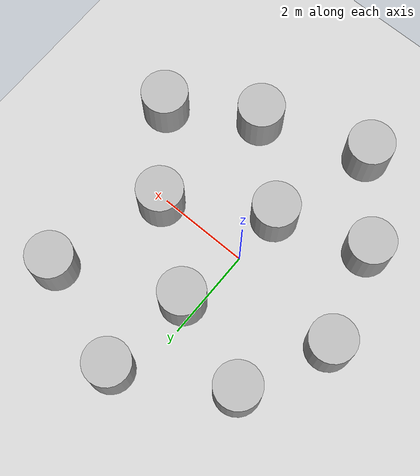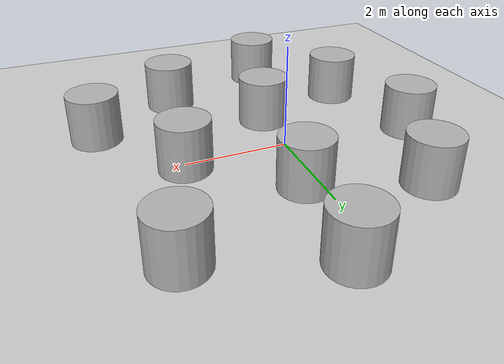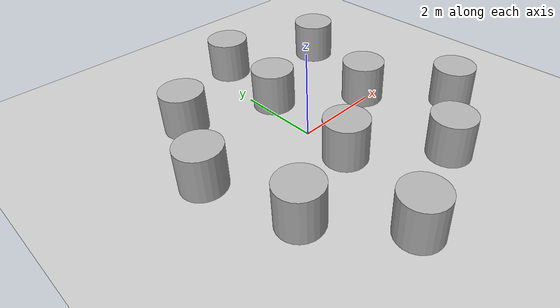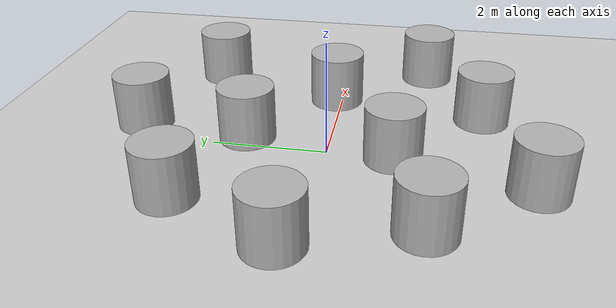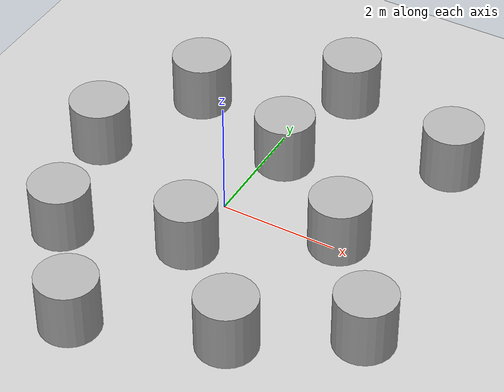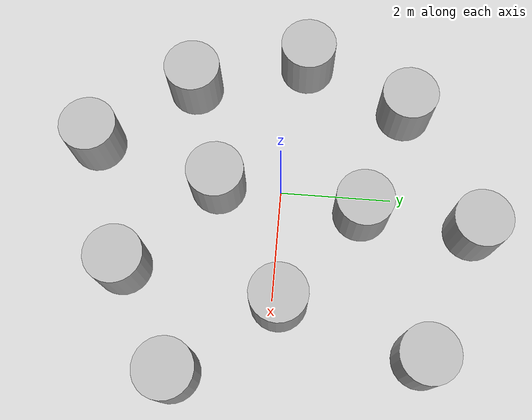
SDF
<sdf version='1.9'>
  <world name='waffle_world'>
    <physics name='1ms' type='ignored'>
      <max_step_size>0.001</max_step_size>
      <real_time_factor>1</real_time_factor>
      <real_time_update_rate>1000</real_time_update_rate>
    </physics>
    <plugin name='ignition::gazebo::systems::Physics' filename='libignition-gazebo-physics-system.so'/>
    <plugin name='ignition::gazebo::systems::UserCommands' filename='libignition-gazebo-user-commands-system.so'/>
    <plugin name='ignition::gazebo::systems::SceneBroadcaster' filename='libignition-gazebo-scene-broadcaster-system.so'/>
    <plugin name='ignition::gazebo::systems::Sensors' filename='libignition-gazebo-sensors-system.so'>
      <render_engine>ogre2</render_engine>
    </plugin>
    <gravity>0 0 -9.8</gravity>
    <magnetic_field>6e-06 2.3e-05 -4.2e-05</magnetic_field>
    <atmosphere type='adiabatic'/>
    <scene>
      <ambient>0.4 0.4 0.4 1</ambient>
      <background>0.7 0.7 0.7 1</background>
      <shadows>true</shadows>
    </scene>
    <model name='ground_plane'>
      <static>true</static>
      <link name='link'>
        <collision name='collision'>
          <geometry>
            <plane>
              <normal>0 0 1</normal>
              <size>100 100</size>
            </plane>
          </geometry>
          <surface>
            <friction>
              <ode/>
            </friction>
            <bounce/>
            <contact/>
          </surface>
        </collision>
        <visual name='visual'>
          <geometry>
            <plane>
              <normal>0 0 1</normal>
              <size>100 100</size>
            </plane>
          </geometry>
          <material>
            <ambient>0.8 0.8 0.8 1</ambient>
            <diffuse>0.8 0.8 0.8 1</diffuse>
            <specular>0.8 0.8 0.8 1</specular>
          </material>
        </visual>
        <pose>0 0 0 0 -0 0</pose>
        <inertial>
          <pose>0 0 0 0 -0 0</pose>
          <mass>1</mass>
          <inertia>
            <ixx>1</ixx>
            <ixy>0</ixy>
            <ixz>0</ixz>
            <iyy>1</iyy>
            <iyz>0</iyz>
            <izz>1</izz>
          </inertia>
        </inertial>
        <enable_wind>false</enable_wind>
      </link>
      <pose>0 0 0 0 -0 0</pose>
      <self_collide>false</self_collide>
    </model>

    <model name='cylinder'>
      <pose>-0.010856 -1.13372 0.499999 0 0 0</pose>
      <link name='cylinder_link'>
        <inertial>
          <inertia>
            <ixx>0.14580000000000001</ixx>
            <ixy>0</ixy>
            <ixz>0</ixz>
            <iyy>0.14580000000000001</iyy>
            <iyz>0</iyz>
            <izz>0.125</izz>
          </inertia>
          <mass>1</mass>
          <pose>0 0 0 0 -0 0</pose>
        </inertial>
        <collision name='cylinder_collision'>
          <geometry>
            <cylinder>
              <radius>0.5</radius>
              <length>1</length>
            </cylinder>
          </geometry>
          <surface>
            <friction>
              <ode/>
            </friction>
            <bounce/>
            <contact/>
          </surface>
        </collision>
        <visual name='cylinder_visual'>
          <geometry>
            <cylinder>
              <radius>0.5</radius>
              <length>1</length>
            </cylinder>
          </geometry>
          <material>
            <ambient>0.3 0.3 0.3 1</ambient>
            <diffuse>0.7 0.7 0.7 1</diffuse>
            <specular>1 1 1 1</specular>
          </material>
        </visual>
        <pose>0 0 0 0 -0 0</pose>
        <enable_wind>false</enable_wind>
      </link>
      <static>false</static>
      <self_collide>false</self_collide>
    </model>
    <model name='cylinder_0'>
      <pose>2.02696 0.11952 0.499999 -0 -0 0</pose>
      <link name='cylinder_link'>
        <inertial>
          <inertia>
            <ixx>0.14580000000000001</ixx>
            <ixy>0</ixy>
            <ixz>0</ixz>
            <iyy>0.14580000000000001</iyy>
            <iyz>0</iyz>
            <izz>0.125</izz>
          </inertia>
          <mass>1</mass>
          <pose>0 0 0 0 -0 0</pose>
        </inertial>
        <collision name='cylinder_collision'>
          <geometry>
            <cylinder>
              <radius>0.5</radius>
              <length>1</length>
            </cylinder>
          </geometry>
          <surface>
            <friction>
              <ode/>
            </friction>
            <bounce/>
            <contact/>
          </surface>
        </collision>
        <visual name='cylinder_visual'>
          <geometry>
            <cylinder>
              <radius>0.5</radius>
              <length>1</length>
            </cylinder>
          </geometry>
          <material>
            <ambient>0.3 0.3 0.3 1</ambient>
            <diffuse>0.7 0.7 0.7 1</diffuse>
            <specular>1 1 1 1</specular>
          </material>
        </visual>
        <pose>0 0 0 0 -0 0</pose>
        <enable_wind>false</enable_wind>
      </link>
      <static>false</static>
      <self_collide>false</self_collide>
    </model>
    <model name='cylinder_1'>
      <pose>0.30309 1.46155 0.499999 -0 0 0</pose>
      <link name='cylinder_link'>
        <inertial>
          <inertia>
            <ixx>0.14580000000000001</ixx>
            <ixy>0</ixy>
            <ixz>0</ixz>
            <iyy>0.14580000000000001</iyy>
            <iyz>0</iyz>
            <izz>0.125</izz>
          </inertia>
          <mass>1</mass>
          <pose>0 0 0 0 -0 0</pose>
        </inertial>
        <collision name='cylinder_collision'>
          <geometry>
            <cylinder>
              <radius>0.5</radius>
              <length>1</length>
            </cylinder>
          </geometry>
          <surface>
            <friction>
              <ode/>
            </friction>
            <bounce/>
            <contact/>
          </surface>
        </collision>
        <visual name='cylinder_visual'>
          <geometry>
            <cylinder>
              <radius>0.5</radius>
              <length>1</length>
            </cylinder>
          </geometry>
          <material>
            <ambient>0.3 0.3 0.3 1</ambient>
            <diffuse>0.7 0.7 0.7 1</diffuse>
            <specular>1 1 1 1</specular>
          </material>
        </visual>
        <pose>0 0 0 0 -0 0</pose>
        <enable_wind>false</enable_wind>
      </link>
      <static>false</static>
      <self_collide>false</self_collide>
    </model>
    <model name='cylinder_2'>
      <pose>-2.56609 0.314251 0.499999 0 -0 0</pose>
      <link name='cylinder_link'>
        <inertial>
          <inertia>
            <ixx>0.14580000000000001</ixx>
            <ixy>0</ixy>
            <ixz>0</ixz>
            <iyy>0.14580000000000001</iyy>
            <iyz>0</iyz>
            <izz>0.125</izz>
          </inertia>
          <mass>1</mass>
          <pose>0 0 0 0 -0 0</pose>
        </inertial>
        <collision name='cylinder_collision'>
          <geometry>
            <cylinder>
              <radius>0.5</radius>
              <length>1</length>
            </cylinder>
          </geometry>
          <surface>
            <friction>
              <ode/>
            </friction>
            <bounce/>
            <contact/>
          </surface>
        </collision>
        <visual name='cylinder_visual'>
          <geometry>
            <cylinder>
              <radius>0.5</radius>
              <length>1</length>
            </cylinder>
          </geometry>
          <material>
            <ambient>0.3 0.3 0.3 1</ambient>
            <diffuse>0.7 0.7 0.7 1</diffuse>
            <specular>1 1 1 1</specular>
          </material>
        </visual>
        <pose>0 0 0 0 -0 0</pose>
        <enable_wind>false</enable_wind>
      </link>
      <static>false</static>
      <self_collide>false</self_collide>
    </model>
    <model name='cylinder_3'>
      <pose>1.59187 -2.64309 0.499999 -0 -0 0</pose>
      <link name='cylinder_link'>
        <inertial>
          <inertia>
            <ixx>0.14580000000000001</ixx>
            <ixy>0</ixy>
            <ixz>0</ixz>
            <iyy>0.14580000000000001</iyy>
            <iyz>0</iyz>
            <izz>0.125</izz>
          </inertia>
          <mass>1</mass>
          <pose>0 0 0 0 -0 0</pose>
        </inertial>
        <collision name='cylinder_collision'>
          <geometry>
            <cylinder>
              <radius>0.5</radius>
              <length>1</length>
            </cylinder>
          </geometry>
          <surface>
            <friction>
              <ode/>
            </friction>
            <bounce/>
            <contact/>
          </surface>
        </collision>
        <visual name='cylinder_visual'>
          <geometry>
            <cylinder>
              <radius>0.5</radius>
              <length>1</length>
            </cylinder>
          </geometry>
          <material>
            <ambient>0.3 0.3 0.3 1</ambient>
            <diffuse>0.7 0.7 0.7 1</diffuse>
            <specular>1 1 1 1</specular>
          </material>
        </visual>
        <pose>0 0 0 0 -0 0</pose>
        <enable_wind>false</enable_wind>
      </link>
      <static>false</static>
      <self_collide>false</self_collide>
    </model>
    <model name='cylinder_4'>
      <pose>-1.95865 -1.75776 0.499999 0 0 -0</pose>
      <link name='cylinder_link'>
        <inertial>
          <inertia>
            <ixx>0.14580000000000001</ixx>
            <ixy>0</ixy>
            <ixz>0</ixz>
            <iyy>0.14580000000000001</iyy>
            <iyz>0</iyz>
            <izz>0.125</izz>
          </inertia>
          <mass>1</mass>
          <pose>0 0 0 0 -0 0</pose>
        </inertial>
        <collision name='cylinder_collision'>
          <geometry>
            <cylinder>
              <radius>0.5</radius>
              <length>1</length>
            </cylinder>
          </geometry>
          <surface>
            <friction>
              <ode/>
            </friction>
            <bounce/>
            <contact/>
          </surface>
        </collision>
        <visual name='cylinder_visual'>
          <geometry>
            <cylinder>
              <radius>0.5</radius>
              <length>1</length>
            </cylinder>
          </geometry>
          <material>
            <ambient>0.3 0.3 0.3 1</ambient>
            <diffuse>0.7 0.7 0.7 1</diffuse>
            <specular>1 1 1 1</specular>
          </material>
        </visual>
        <pose>0 0 0 0 -0 0</pose>
        <enable_wind>false</enable_wind>
      </link>
      <static>false</static>
      <self_collide>false</self_collide>
    </model>
    <model name='cylinder_5'>
      <pose>-1.71365 2.18214 0.499999 0 0 0</pose>
      <link name='cylinder_link'>
        <inertial>
          <inertia>
            <ixx>0.14580000000000001</ixx>
            <ixy>0</ixy>
            <ixz>0</ixz>
            <iyy>0.14580000000000001</iyy>
            <iyz>0</iyz>
            <izz>0.125</izz>
          </inertia>
          <mass>1</mass>
          <pose>0 0 0 0 -0 0</pose>
        </inertial>
        <collision name='cylinder_collision'>
          <geometry>
            <cylinder>
              <radius>0.5</radius>
              <length>1</length>
            </cylinder>
          </geometry>
          <surface>
            <friction>
              <ode/>
            </friction>
            <bounce/>
            <contact/>
          </surface>
        </collision>
        <visual name='cylinder_visual'>
          <geometry>
            <cylinder>
              <radius>0.5</radius>
              <length>1</length>
            </cylinder>
          </geometry>
          <material>
            <ambient>0.3 0.3 0.3 1</ambient>
            <diffuse>0.7 0.7 0.7 1</diffuse>
            <specular>1 1 1 1</specular>
          </material>
        </visual>
        <pose>0 0 0 0 -0 0</pose>
        <enable_wind>false</enable_wind>
      </link>
      <static>false</static>
      <self_collide>false</self_collide>
    </model>
    <model name='cylinder_6'>
      <pose>2.81083 2.57429 0.499999 0 0 -0</pose>
      <link name='cylinder_link'>
        <inertial>
          <inertia>
            <ixx>0.14580000000000001</ixx>
            <ixy>0</ixy>
            <ixz>0</ixz>
            <iyy>0.14580000000000001</iyy>
            <iyz>0</iyz>
            <izz>0.125</izz>
          </inertia>
          <mass>1</mass>
          <pose>0 0 0 0 -0 0</pose>
        </inertial>
        <collision name='cylinder_collision'>
          <geometry>
            <cylinder>
              <radius>0.5</radius>
              <length>1</length>
            </cylinder>
          </geometry>
          <surface>
            <friction>
              <ode/>
            </friction>
            <bounce/>
            <contact/>
          </surface>
        </collision>
        <visual name='cylinder_visual'>
          <geometry>
            <cylinder>
              <radius>0.5</radius>
              <length>1</length>
            </cylinder>
          </geometry>
          <material>
            <ambient>0.3 0.3 0.3 1</ambient>
            <diffuse>0.7 0.7 0.7 1</diffuse>
            <specular>1 1 1 1</specular>
          </material>
        </visual>
        <pose>0 0 0 0 -0 0</pose>
        <enable_wind>false</enable_wind>
      </link>
      <static>false</static>
      <self_collide>false</self_collide>
    </model>
    <model name='cylinder_7'>
      <pose>3.35007 -1.58302 0.499999 0 0 0</pose>
      <link name='cylinder_link'>
        <inertial>
          <inertia>
            <ixx>0.14580000000000001</ixx>
            <ixy>0</ixy>
            <ixz>0</ixz>
            <iyy>0.14580000000000001</iyy>
            <iyz>0</iyz>
            <izz>0.125</izz>
          </inertia>
          <mass>1</mass>
          <pose>0 0 0 0 -0 0</pose>
        </inertial>
        <collision name='cylinder_collision'>
          <geometry>
            <cylinder>
              <radius>0.5</radius>
              <length>1</length>
            </cylinder>
          </geometry>
          <surface>
            <friction>
              <ode/>
            </friction>
            <bounce/>
            <contact/>
          </surface>
        </collision>
        <visual name='cylinder_visual'>
          <geometry>
            <cylinder>
              <radius>0.5</radius>
              <length>1</length>
            </cylinder>
          </geometry>
          <material>
            <ambient>0.3 0.3 0.3 1</ambient>
            <diffuse>0.7 0.7 0.7 1</diffuse>
            <specular>1 1 1 1</specular>
          </material>
        </visual>
        <pose>0 0 0 0 -0 0</pose>
        <enable_wind>false</enable_wind>
      </link>
      <static>false</static>
      <self_collide>false</self_collide>
    </model>
    <model name='cylinder_8'>
      <pose>0.510753 3.44464 0.499999 0 0 0</pose>
      <link name='cylinder_link'>
        <inertial>
          <inertia>
            <ixx>0.14580000000000001</ixx>
            <ixy>0</ixy>
            <ixz>0</ixz>
            <iyy>0.14580000000000001</iyy>
            <iyz>0</iyz>
            <izz>0.125</izz>
          </inertia>
          <mass>1</mass>
          <pose>0 0 0 0 -0 0</pose>
        </inertial>
        <collision name='cylinder_collision'>
          <geometry>
            <cylinder>
              <radius>0.5</radius>
              <length>1</length>
            </cylinder>
          </geometry>
          <surface>
            <friction>
              <ode/>
            </friction>
            <bounce/>
            <contact/>
          </surface>
        </collision>
        <visual name='cylinder_visual'>
          <geometry>
            <cylinder>
              <radius>0.5</radius>
              <length>1</length>
            </cylinder>
          </geometry>
          <material>
            <ambient>0.3 0.3 0.3 1</ambient>
            <diffuse>0.7 0.7 0.7 1</diffuse>
            <specular>1 1 1 1</specular>
          </material>
        </visual>
        <pose>0 0 0 0 -0 0</pose>
        <enable_wind>false</enable_wind>
      </link>
      <static>false</static>
      <self_collide>false</self_collide>
    </model>
    <model name='cylinder_9'>
      <pose>-0.679298 -3.44152 0.499999 0 -0 0</pose>
      <link name='cylinder_link'>
        <inertial>
          <inertia>
            <ixx>0.14580000000000001</ixx>
            <ixy>0</ixy>
            <ixz>0</ixz>
            <iyy>0.14580000000000001</iyy>
            <iyz>0</iyz>
            <izz>0.125</izz>
          </inertia>
          <mass>1</mass>
          <pose>0 0 0 0 -0 0</pose>
        </inertial>
        <collision name='cylinder_collision'>
          <geometry>
            <cylinder>
              <radius>0.5</radius>
              <length>1</length>
            </cylinder>
          </geometry>
          <surface>
            <friction>
              <ode/>
            </friction>
            <bounce/>
            <contact/>
          </surface>
        </collision>
        <visual name='cylinder_visual'>
          <geometry>
            <cylinder>
              <radius>0.5</radius>
              <length>1</length>
            </cylinder>
          </geometry>
          <material>
            <ambient>0.3 0.3 0.3 1</ambient>
            <diffuse>0.7 0.7 0.7 1</diffuse>
            <specular>1 1 1 1</specular>
          </material>
        </visual>
        <pose>0 0 0 0 -0 0</pose>
        <enable_wind>false</enable_wind>
      </link>
      <static>false</static>
      <self_collide>false</self_collide>
    </model>
    <light name='sun' type='directional'>
      <pose>0 0 10 0 -0 0</pose>
      <cast_shadows>true</cast_shadows>
      <intensity>1</intensity>
      <direction>-0.5 0.1 -0.9</direction>
      <diffuse>0.8 0.8 0.8 1</diffuse>
      <specular>0.2 0.2 0.2 1</specular>
      <attenuation>
        <range>1000</range>
        <linear>0.01</linear>
        <constant>0.90000000000000002</constant>
        <quadratic>0.001</quadratic>
      </attenuation>
      <spot>
        <inner_angle>0</inner_angle>
        <outer_angle>0</outer_angle>
        <falloff>0</falloff>
      </spot>
    </light>
  </world>
</sdf>
